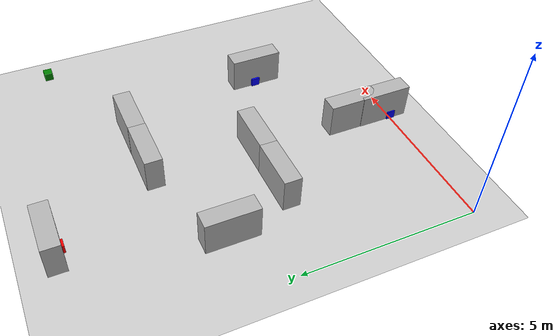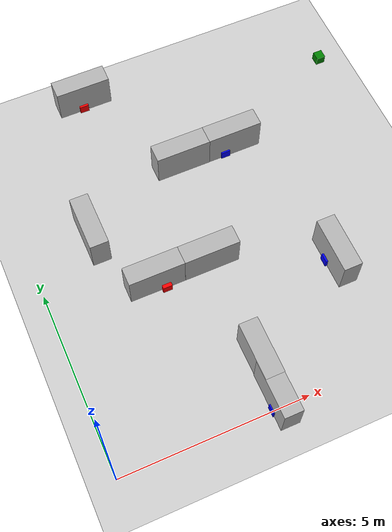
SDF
<sdf version='1.10'>
  <world name='empty'>
    <physics name='1ms' type='ignored'>
      <max_step_size>0.001</max_step_size>
      <real_time_factor>1</real_time_factor>
      <real_time_update_rate>1000</real_time_update_rate>
    </physics>
    <plugin name='gz::sim::systems::Physics' filename='gz-sim-physics-system'/>
    <plugin name='gz::sim::systems::UserCommands' filename='gz-sim-user-commands-system'/>
    <plugin name='gz::sim::systems::SceneBroadcaster' filename='gz-sim-scene-broadcaster-system'/>
    <plugin name='gz::sim::systems::Contact' filename='gz-sim-contact-system'/>
    <plugin name='gz::sim::systems::Sensors' filename='gz-sim-sensors-system'>
      <render_engine>ogre2</render_engine>
    </plugin>
    <gravity>0 0 -9.8000000000000007</gravity>
    <magnetic_field>5.5644999999999998e-06 2.2875799999999999e-05 -4.2388400000000002e-05</magnetic_field>
    <atmosphere type='adiabatic'/>
    <scene>
      <ambient>0.400000006 0.400000006 0.400000006 1</ambient>
      <background>0.699999988 0.699999988 0.699999988 1</background>
      <shadows>true</shadows>
    </scene>
    <model name='ground_plane'>
      <static>true</static>
      <link name='link'>
        <collision name='collision'>
          <geometry>
            <plane>
              <normal>0 0 1</normal>
              <size>100 100</size>
            </plane>
          </geometry>
          <surface>
            <friction>
              <ode/>
            </friction>
            <bounce/>
            <contact/>
          </surface>
        </collision>
        <visual name='visual'>
          <geometry>
            <plane>
              <normal>0 0 1</normal>
              <size>100 100</size>
            </plane>
          </geometry>
          <material>
            <ambient>0.800000012 0.800000012 0.800000012 1</ambient>
            <diffuse>0.800000012 0.800000012 0.800000012 1</diffuse>
            <specular>0.800000012 0.800000012 0.800000012 1</specular>
          </material>
        </visual>
        <pose>0 0 0 0 0 0</pose>
        <inertial>
          <pose>0 0 0 0 0 0</pose>
          <mass>1</mass>
          <inertia>
            <ixx>1</ixx>
            <ixy>0</ixy>
            <ixz>0</ixz>
            <iyy>1</iyy>
            <iyz>0</iyz>
            <izz>1</izz>
          </inertia>
        </inertial>
        <enable_wind>false</enable_wind>
      </link>
      <pose>0 0 0 0 0 0</pose>
      <self_collide>false</self_collide>
    </model>
    <model name='blue_cube'>
      <pose>4.0812158584594727 0 0.13099700212478638 0 0 0</pose>
      <link name='link'>
        <visual name='visual'>
          <geometry>
            <box>
              <size>0.25 0.25 0.25</size>
            </box>
          </geometry>
          <material>
            <ambient>0 0 1 1</ambient>
            <diffuse>0 0 1 1</diffuse>
            <specular>0.100000001 0.100000001 0.100000001 1</specular>
          </material>
        </visual>
        <collision name='collision'>
          <geometry>
            <box>
              <size>0.25 0.25 0.25</size>
            </box>
          </geometry>
          <surface>
            <friction>
              <ode/>
            </friction>
            <bounce/>
            <contact/>
          </surface>
        </collision>
        <pose>0 0 0 0 0 0</pose>
        <inertial>
          <pose>0 0 0 0 0 0</pose>
          <mass>0.015625</mass>
          <inertia>
            <ixx>0.001302</ixx>
            <ixy>0</ixy>
            <ixz>0</ixz>
            <iyy>0.001302</iyy>
            <iyz>0</iyz>
            <izz>0.001302</izz>
          </inertia>
        </inertial>
        <enable_wind>false</enable_wind>
      </link>
      <static>false</static>
      <self_collide>false</self_collide>
    </model>
    <model name='red_cube'>
      <pose>2.961359977722168 4.0213885307312012 0.125 0 0 0</pose>
      <link name='link'>
        <visual name='visual'>
          <geometry>
            <box>
              <size>0.25 0.25 0.25</size>
            </box>
          </geometry>
          <material>
            <ambient>1 0 0 1</ambient>
            <diffuse>1 0 0 1</diffuse>
            <specular>0.100000001 0.100000001 0.100000001 1</specular>
          </material>
        </visual>
        <collision name='collision'>
          <geometry>
            <box>
              <size>0.25 0.25 0.25</size>
            </box>
          </geometry>
          <surface>
            <friction>
              <ode/>
            </friction>
            <bounce/>
            <contact/>
          </surface>
        </collision>
        <pose>0 0 0 0 0 0</pose>
        <inertial>
          <pose>0 0 0 0 0 0</pose>
          <mass>0.015625</mass>
          <inertia>
            <ixx>0.001302</ixx>
            <ixy>0</ixy>
            <ixz>0</ixz>
            <iyy>0.001302</iyy>
            <iyz>0</iyz>
            <izz>0.001302</izz>
          </inertia>
        </inertial>
        <enable_wind>false</enable_wind>
      </link>
      <static>false</static>
      <self_collide>false</self_collide>
    </model>
    <model name='red_cube_1'>
      <pose>1.9239665269851685 6.0644898414611816 0.125 0 0 0</pose>
      <link name='link'>
        <visual name='visual'>
          <geometry>
            <box>
              <size>0.25 0.25 0.25</size>
            </box>
          </geometry>
          <material>
            <ambient>1 0 0 1</ambient>
            <diffuse>1 0 0 1</diffuse>
            <specular>0.100000001 0.100000001 0.100000001 1</specular>
          </material>
        </visual>
        <collision name='collision'>
          <geometry>
            <box>
              <size>0.25 0.25 0.25</size>
            </box>
          </geometry>
          <surface>
            <friction>
              <ode/>
            </friction>
            <bounce/>
            <contact/>
          </surface>
        </collision>
        <pose>0 0 0 0 0 0</pose>
        <inertial>
          <pose>0 0 0 0 0 0</pose>
          <mass>0.015625</mass>
          <inertia>
            <ixx>0.001302</ixx>
            <ixy>0</ixy>
            <ixz>0</ixz>
            <iyy>0.001302</iyy>
            <iyz>0</iyz>
            <izz>0.001302</izz>
          </inertia>
        </inertial>
        <enable_wind>false</enable_wind>
      </link>
      <static>false</static>
      <self_collide>false</self_collide>
    </model>
    <model name='blue_cube_1'>
      <pose>7.0619844710917805 3.0334876166866875 0.13099700212478638 0 0 0</pose>
      <link name='link'>
        <visual name='visual'>
          <geometry>
            <box>
              <size>0.25 0.25 0.25</size>
            </box>
          </geometry>
          <material>
            <ambient>0 0 1 1</ambient>
            <diffuse>0 0 1 1</diffuse>
            <specular>0.100000001 0.100000001 0.100000001 1</specular>
          </material>
        </visual>
        <collision name='collision'>
          <geometry>
            <box>
              <size>0.25 0.25 0.25</size>
            </box>
          </geometry>
          <surface>
            <friction>
              <ode/>
            </friction>
            <bounce/>
            <contact/>
          </surface>
        </collision>
        <pose>0 0 0 0 0 0</pose>
        <inertial>
          <pose>0 0 0 0 0 0</pose>
          <mass>0.015625</mass>
          <inertia>
            <ixx>0.001302</ixx>
            <ixy>0</ixy>
            <ixz>0</ixz>
            <iyy>0.001302</iyy>
            <iyz>0</iyz>
            <izz>0.001302</izz>
          </inertia>
        </inertial>
        <enable_wind>false</enable_wind>
      </link>
      <static>false</static>
      <self_collide>false</self_collide>
    </model>
    <model name='box_1'>
      <pose>4.2533698081970215 1.2581812143325806 0.5 0 0 0</pose>
      <link name='box_link2'>
        <inertial>
          <inertia>
            <ixx>0.16666</ixx>
            <ixy>0</ixy>
            <ixz>0</ixz>
            <iyy>0.16666</iyy>
            <iyz>0</iyz>
            <izz>0.16666</izz>
          </inertia>
          <mass>1</mass>
          <pose>0 0 0 0 0 0</pose>
        </inertial>
        <collision name='box_collision'>
          <geometry>
            <box>
              <size>0.5 1.5 1</size>
            </box>
          </geometry>
          <surface>
            <friction>
              <ode/>
            </friction>
            <bounce/>
            <contact/>
          </surface>
        </collision>
        <visual name='box_visual'>
          <geometry>
            <box>
              <size>0.5 1.5 1</size>
            </box>
          </geometry>
          <material>
            <ambient>0.300000012 0.300000012 0.300000012 1</ambient>
            <diffuse>0.699999988 0.699999988 0.699999988 1</diffuse>
            <specular>1 1 1 1</specular>
          </material>
        </visual>
        <pose>0 0 0 0 0 0</pose>
        <enable_wind>false</enable_wind>
      </link>
      <static>false</static>
      <self_collide>false</self_collide>
    </model>
    <model name='box_1_3'>
      <pose>4.2418746818408586 0.25369034573936489 0.5 0 0 0</pose>
      <link name='box_link2'>
        <inertial>
          <inertia>
            <ixx>0.16666</ixx>
            <ixy>0</ixy>
            <ixz>0</ixz>
            <iyy>0.16666</iyy>
            <iyz>0</iyz>
            <izz>0.16666</izz>
          </inertia>
          <mass>1</mass>
          <pose>0 0 0 0 0 0</pose>
        </inertial>
        <collision name='box_collision'>
          <geometry>
            <box>
              <size>0.5 1.5 1</size>
            </box>
          </geometry>
          <surface>
            <friction>
              <ode/>
            </friction>
            <bounce/>
            <contact/>
          </surface>
        </collision>
        <visual name='box_visual'>
          <geometry>
            <box>
              <size>0.5 1.5 1</size>
            </box>
          </geometry>
          <material>
            <ambient>0.300000012 0.300000012 0.300000012 1</ambient>
            <diffuse>0.699999988 0.699999988 0.699999988 1</diffuse>
            <specular>1 1 1 1</specular>
          </material>
        </visual>
        <pose>0 0 0 0 0 0</pose>
        <enable_wind>false</enable_wind>
      </link>
      <static>false</static>
      <self_collide>false</self_collide>
    </model>
    <model name='box_4'>
      <pose>2.7402353355475295 4.2480221349983518 0.5 0 0 0</pose>
      <link name='box_link'>
        <inertial>
          <inertia>
            <ixx>0.16666</ixx>
            <ixy>0</ixy>
            <ixz>0</ixz>
            <iyy>0.16666</iyy>
            <iyz>0</iyz>
            <izz>0.16666</izz>
          </inertia>
          <mass>1</mass>
          <pose>0 0 0 0 0 0</pose>
        </inertial>
        <collision name='box_collision'>
          <geometry>
            <box>
              <size>1.5 0.5 1</size>
            </box>
          </geometry>
          <surface>
            <friction>
              <ode/>
            </friction>
            <bounce/>
            <contact/>
          </surface>
        </collision>
        <visual name='box_visual'>
          <geometry>
            <box>
              <size>1.5 0.5 1</size>
            </box>
          </geometry>
          <material>
            <ambient>0.300000012 0.300000012 0.300000012 1</ambient>
            <diffuse>0.699999988 0.699999988 0.699999988 1</diffuse>
            <specular>1 1 1 1</specular>
          </material>
        </visual>
        <pose>0 0 0 0 0 0</pose>
        <enable_wind>false</enable_wind>
      </link>
      <static>false</static>
      <self_collide>false</self_collide>
    </model>
    <model name='box_1_5'>
      <pose>7.2444100379943848 2.9918458461761475 0.5 0 0 0</pose>
      <link name='box_link2'>
        <inertial>
          <inertia>
            <ixx>0.16666</ixx>
            <ixy>0</ixy>
            <ixz>0</ixz>
            <iyy>0.16666</iyy>
            <iyz>0</iyz>
            <izz>0.16666</izz>
          </inertia>
          <mass>1</mass>
          <pose>0 0 0 0 0 0</pose>
        </inertial>
        <collision name='box_collision'>
          <geometry>
            <box>
              <size>0.5 1.5 1</size>
            </box>
          </geometry>
          <surface>
            <friction>
              <ode/>
            </friction>
            <bounce/>
            <contact/>
          </surface>
        </collision>
        <visual name='box_visual'>
          <geometry>
            <box>
              <size>0.5 1.5 1</size>
            </box>
          </geometry>
          <material>
            <ambient>0.300000012 0.300000012 0.300000012 1</ambient>
            <diffuse>0.699999988 0.699999988 0.699999988 1</diffuse>
            <specular>1 1 1 1</specular>
          </material>
        </visual>
        <pose>0 0 0 0 0 0</pose>
        <enable_wind>false</enable_wind>
      </link>
      <static>false</static>
      <self_collide>false</self_collide>
    </model>
    <model name='box_4_1'>
      <pose>4.2316361893303576 4.2460312416324024 0.5 0 0 0</pose>
      <link name='box_link'>
        <inertial>
          <inertia>
            <ixx>0.16666</ixx>
            <ixy>0</ixy>
            <ixz>0</ixz>
            <iyy>0.16666</iyy>
            <iyz>0</iyz>
            <izz>0.16666</izz>
          </inertia>
          <mass>1</mass>
          <pose>0 0 0 0 0 0</pose>
        </inertial>
        <collision name='box_collision'>
          <geometry>
            <box>
              <size>1.5 0.5 1</size>
            </box>
          </geometry>
          <surface>
            <friction>
              <ode/>
            </friction>
            <bounce/>
            <contact/>
          </surface>
        </collision>
        <visual name='box_visual'>
          <geometry>
            <box>
              <size>1.5 0.5 1</size>
            </box>
          </geometry>
          <material>
            <ambient>0.300000012 0.300000012 0.300000012 1</ambient>
            <diffuse>0.699999988 0.699999988 0.699999988 1</diffuse>
            <specular>1 1 1 1</specular>
          </material>
        </visual>
        <pose>0 0 0 0 0 0</pose>
        <enable_wind>false</enable_wind>
      </link>
      <static>false</static>
      <self_collide>false</self_collide>
    </model>
    <model name='green_block'>
      <pose>9.8513202667236328 8.9219760894775391 0.125 0 0 0</pose>
      <link name='link'>
        <visual name='visual'>
          <geometry>
            <box>
              <size>0.25 0.25 0.25</size>
            </box>
          </geometry>
          <material>
            <ambient>0 0.5 0 1</ambient>
            <diffuse>0 0.5 0 1</diffuse>
            <specular>0.100000001 0.100000001 0.100000001 1</specular>
          </material>
        </visual>
        <collision name='collision'>
          <geometry>
            <box>
              <size>0.25 0.25 0.25</size>
            </box>
          </geometry>
          <surface>
            <friction>
              <ode/>
            </friction>
            <bounce/>
            <contact/>
          </surface>
        </collision>
        <inertial>
          <mass>1</mass>
          <inertia>
            <ixx>0.020833000000000001</ixx>
            <ixy>0</ixy>
            <ixz>0</ixz>
            <iyy>0.020833000000000001</iyy>
            <iyz>0</iyz>
            <izz>0.020833000000000001</izz>
          </inertia>
          <pose>0 0 0 0 0 0</pose>
        </inertial>
        <pose>0 0 0 0 0 0</pose>
        <enable_wind>false</enable_wind>
      </link>
      <static>false</static>
      <self_collide>false</self_collide>
    </model>
    <model name='box_4_1_1'>
      <pose>4.7559490518755396 7.25412475968165 0.5 0 0 0</pose>
      <link name='box_link'>
        <inertial>
          <inertia>
            <ixx>0.16666</ixx>
            <ixy>0</ixy>
            <ixz>0</ixz>
            <iyy>0.16666</iyy>
            <iyz>0</iyz>
            <izz>0.16666</izz>
          </inertia>
          <mass>1</mass>
          <pose>0 0 0 0 0 0</pose>
        </inertial>
        <collision name='box_collision'>
          <geometry>
            <box>
              <size>1.5 0.5 1</size>
            </box>
          </geometry>
          <surface>
            <friction>
              <ode/>
            </friction>
            <bounce/>
            <contact/>
          </surface>
        </collision>
        <visual name='box_visual'>
          <geometry>
            <box>
              <size>1.5 0.5 1</size>
            </box>
          </geometry>
          <material>
            <ambient>0.300000012 0.300000012 0.300000012 1</ambient>
            <diffuse>0.699999988 0.699999988 0.699999988 1</diffuse>
            <specular>1 1 1 1</specular>
          </material>
        </visual>
        <pose>0 0 0 0 0 0</pose>
        <enable_wind>false</enable_wind>
      </link>
      <static>false</static>
      <self_collide>false</self_collide>
    </model>
    <model name='box_4_1_2'>
      <pose>6.2479854028945301 7.2574521418334266 0.5 0 0 0</pose>
      <link name='box_link'>
        <inertial>
          <inertia>
            <ixx>0.16666</ixx>
            <ixy>0</ixy>
            <ixz>0</ixz>
            <iyy>0.16666</iyy>
            <iyz>0</iyz>
            <izz>0.16666</izz>
          </inertia>
          <mass>1</mass>
          <pose>0 0 0 0 0 0</pose>
        </inertial>
        <collision name='box_collision'>
          <geometry>
            <box>
              <size>1.5 0.5 1</size>
            </box>
          </geometry>
          <surface>
            <friction>
              <ode/>
            </friction>
            <bounce/>
            <contact/>
          </surface>
        </collision>
        <visual name='box_visual'>
          <geometry>
            <box>
              <size>1.5 0.5 1</size>
            </box>
          </geometry>
          <material>
            <ambient>0.300000012 0.300000012 0.300000012 1</ambient>
            <diffuse>0.699999988 0.699999988 0.699999988 1</diffuse>
            <specular>1 1 1 1</specular>
          </material>
        </visual>
        <pose>0 0 0 0 0 0</pose>
        <enable_wind>false</enable_wind>
      </link>
      <static>false</static>
      <self_collide>false</self_collide>
    </model>
    <model name='blue_cube_1_1'>
      <pose>5.9836524507551694 7.0900795221356177 0.13099700212478638 0 0 0</pose>
      <link name='link'>
        <visual name='visual'>
          <geometry>
            <box>
              <size>0.25 0.25 0.25</size>
            </box>
          </geometry>
          <material>
            <ambient>0 0 1 1</ambient>
            <diffuse>0 0 1 1</diffuse>
            <specular>0.100000001 0.100000001 0.100000001 1</specular>
          </material>
        </visual>
        <collision name='collision'>
          <geometry>
            <box>
              <size>0.25 0.25 0.25</size>
            </box>
          </geometry>
          <surface>
            <friction>
              <ode/>
            </friction>
            <bounce/>
            <contact/>
          </surface>
        </collision>
        <pose>0 0 0 0 0 0</pose>
        <inertial>
          <pose>0 0 0 0 0 0</pose>
          <mass>0.015625</mass>
          <inertia>
            <ixx>0.001302</ixx>
            <ixy>0</ixy>
            <ixz>0</ixz>
            <iyy>0.001302</iyy>
            <iyz>0</iyz>
            <izz>0.001302</izz>
          </inertia>
        </inertial>
        <enable_wind>false</enable_wind>
      </link>
      <static>false</static>
      <self_collide>false</self_collide>
    </model>
    <model name='red_cube_1_1'>
      <pose>2.9766577757609403 10.067266411338744 0.125 0 0 0</pose>
      <link name='link'>
        <visual name='visual'>
          <geometry>
            <box>
              <size>0.25 0.25 0.25</size>
            </box>
          </geometry>
          <material>
            <ambient>1 0 0 1</ambient>
            <diffuse>1 0 0 1</diffuse>
            <specular>0.100000001 0.100000001 0.100000001 1</specular>
          </material>
        </visual>
        <collision name='collision'>
          <geometry>
            <box>
              <size>0.25 0.25 0.25</size>
            </box>
          </geometry>
          <surface>
            <friction>
              <ode/>
            </friction>
            <bounce/>
            <contact/>
          </surface>
        </collision>
        <pose>0 0 0 0 0 0</pose>
        <inertial>
          <pose>0 0 0 0 0 0</pose>
          <mass>0.015625</mass>
          <inertia>
            <ixx>0.001302</ixx>
            <ixy>0</ixy>
            <ixz>0</ixz>
            <iyy>0.001302</iyy>
            <iyz>0</iyz>
            <izz>0.001302</izz>
          </inertia>
        </inertial>
        <enable_wind>false</enable_wind>
      </link>
      <static>false</static>
      <self_collide>false</self_collide>
    </model>
    <model name='box_4_1_1_1'>
      <pose>3.0416297912597656 10.253499984741211 0.5 0 0 0</pose>
      <link name='box_link'>
        <inertial>
          <inertia>
            <ixx>0.16666</ixx>
            <ixy>0</ixy>
            <ixz>0</ixz>
            <iyy>0.16666</iyy>
            <iyz>0</iyz>
            <izz>0.16666</izz>
          </inertia>
          <mass>1</mass>
          <pose>0 0 0 0 0 0</pose>
        </inertial>
        <collision name='box_collision'>
          <geometry>
            <box>
              <size>1.5 0.5 1</size>
            </box>
          </geometry>
          <surface>
            <friction>
              <ode/>
            </friction>
            <bounce/>
            <contact/>
          </surface>
        </collision>
        <visual name='box_visual'>
          <geometry>
            <box>
              <size>1.5 0.5 1</size>
            </box>
          </geometry>
          <material>
            <ambient>0.300000012 0.300000012 0.300000012 1</ambient>
            <diffuse>0.699999988 0.699999988 0.699999988 1</diffuse>
            <specular>1 1 1 1</specular>
          </material>
        </visual>
        <pose>0 0 0 0 0 0</pose>
        <enable_wind>false</enable_wind>
      </link>
      <static>false</static>
      <self_collide>false</self_collide>
    </model>
    <model name='box_1_5_2_1_1'>
      <pose>1.7288751816692756 6.0834891641403148 0.5 0 0 0</pose>
      <link name='box_link2'>
        <inertial>
          <inertia>
            <ixx>0.16666</ixx>
            <ixy>0</ixy>
            <ixz>0</ixz>
            <iyy>0.16666</iyy>
            <iyz>0</iyz>
            <izz>0.16666</izz>
          </inertia>
          <mass>1</mass>
          <pose>0 0 0 0 0 0</pose>
        </inertial>
        <collision name='box_collision'>
          <geometry>
            <box>
              <size>0.5 1.5 1</size>
            </box>
          </geometry>
          <surface>
            <friction>
              <ode/>
            </friction>
            <bounce/>
            <contact/>
          </surface>
        </collision>
        <visual name='box_visual'>
          <geometry>
            <box>
              <size>0.5 1.5 1</size>
            </box>
          </geometry>
          <material>
            <ambient>0.300000012 0.300000012 0.300000012 1</ambient>
            <diffuse>0.699999988 0.699999988 0.699999988 1</diffuse>
            <specular>1 1 1 1</specular>
          </material>
        </visual>
        <pose>0 0 0 0 0 0</pose>
        <enable_wind>false</enable_wind>
      </link>
      <static>false</static>
      <self_collide>false</self_collide>
    </model>
    <light name='sun' type='directional'>
      <pose>0 0 10 0 0 0</pose>
      <cast_shadows>true</cast_shadows>
      <intensity>1</intensity>
      <direction>-0.5 0.10000000000000001 -0.90000000000000002</direction>
      <diffuse>0.800000012 0.800000012 0.800000012 1</diffuse>
      <specular>0.200000003 0.200000003 0.200000003 1</specular>
      <attenuation>
        <range>1000</range>
        <linear>0.01</linear>
        <constant>0.90000000000000002</constant>
        <quadratic>0.001</quadratic>
      </attenuation>
      <spot>
        <inner_angle>0</inner_angle>
        <outer_angle>0</outer_angle>
        <falloff>0</falloff>
      </spot>
    </light>
  </world>
</sdf>
